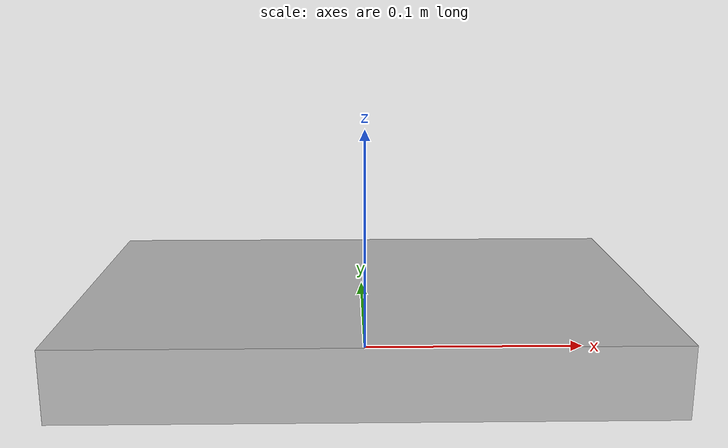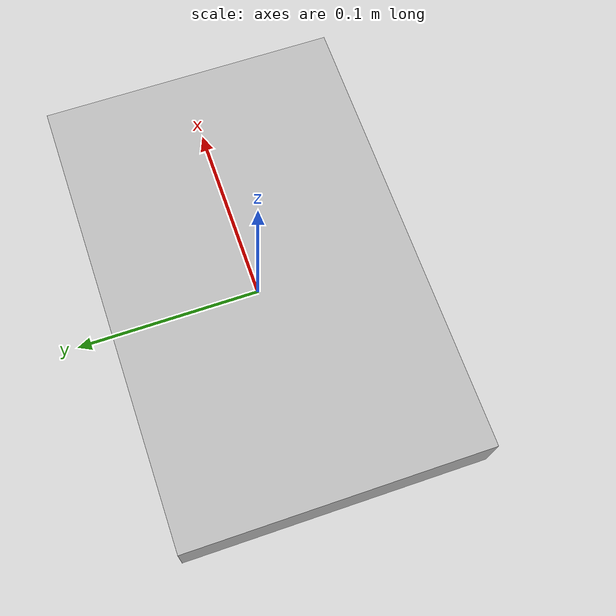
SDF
<?xml version='1.0'?>
<sdf version='1.6'>
  <model name='book_17'>
    <link name='cover'>
      <pose frame=''>0 -0.000108 0.015405 0 -0 0</pose>
      <inertial>
        <mass>1</mass>
        <inertia>
          <ixx>0.166667</ixx>
          <ixy>0</ixy>
          <ixz>0</ixz>
          <iyy>0.166667</iyy>
          <iyz>0</iyz>
          <izz>0.166667</izz>
        </inertia>
        <pose frame=''>0 0 0 0 -0 0</pose>
      </inertial>
      <self_collide>0</self_collide>
      <kinematic>0</kinematic>
      <gravity>1</gravity>
      <visual name='visual'>
        <geometry>
          <box>
            <size>0.245 0.16 0.03</size>
          </box>
        </geometry>
      	<material>
          <script>
            <uri>model://book_17/materials/scripts</uri>
            <uri>model://book_17/materials/textures</uri>
            <name>book_17</name>
          </script>
        </material>
        <cast_shadows>1</cast_shadows>
        <transparency>0</transparency>
      </visual>
      <collision name='collision'>
        <laser_retro>0</laser_retro>
        <max_contacts>10</max_contacts>
          <geometry>
          <box>
            <size>0.245 0.16 0.03</size>
          </box>
        </geometry>
       </collision>
    </link>
    <static>0</static>
    <allow_auto_disable>1</allow_auto_disable>
  </model>
</sdf>
